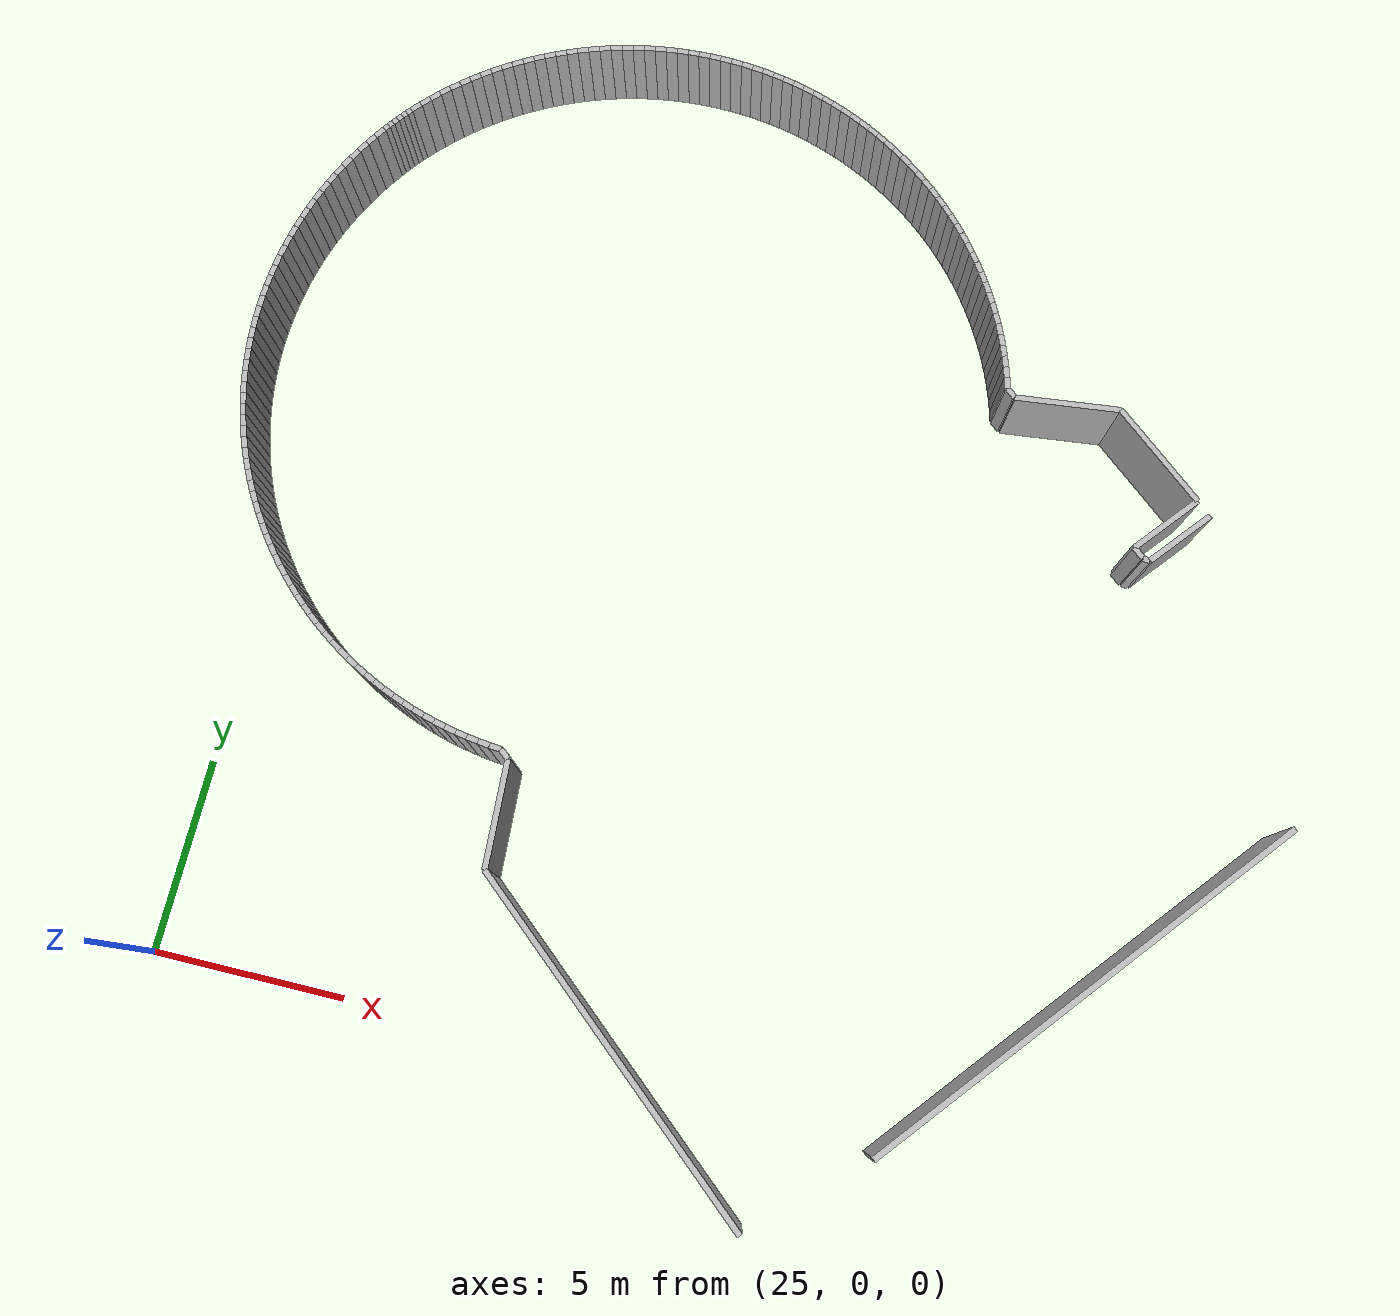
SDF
<sdf version="1.6">
 <model name="sps_4011">
  <static>1</static>
  <allow_auto_disable>0</allow_auto_disable>
  <link name="Wall1117">
   <collision name="collision"><geometry><box><size>13.0009 0.15 2.5</size></box></geometry></collision>
   <visual name="visual">
    <geometry><box><size>13.0009 0.15 2.5</size></box></geometry>
    <transparency>0.0</transparency>
   </visual>
   <pose>47.7584 4.36549 1.25 0 0 -2.27375</pose>
  </link>
  <link name="Wall1122">
   <collision name="collision"><geometry><box><size>10.3999 0.15 2.5</size></box></geometry></collision>
   <visual name="visual">
    <geometry><box><size>10.3999 0.15 2.5</size></box></geometry>
    <transparency>0.0</transparency>
   </visual>
   <pose>36.9448 0.420974 1.25 0 -0 2.43867</pose>
  </link>
  <link name="Wall1123">
   <collision name="collision"><geometry><box><size>2.75904 0.15 2.5</size></box></geometry></collision>
   <visual name="visual">
    <geometry><box><size>2.75904 0.15 2.5</size></box></geometry>
    <transparency>0.0</transparency>
   </visual>
   <pose>32.899 5.15977 1.25 0 -0 1.62766</pose>
  </link>
  <link name="Wall1124">
   <collision name="collision"><geometry><box><size>0.299242 0.15 2.5</size></box></geometry></collision>
   <visual name="visual">
    <geometry><box><size>0.299242 0.15 2.5</size></box></geometry>
    <transparency>0.0</transparency>
   </visual>
   <pose>32.7067 6.63399 1.25 0 -0 2.4369</pose>
  </link>
  <link name="Wall1125">
   <collision name="collision"><geometry><box><size>0.304996 0.15 2.5</size></box></geometry></collision>
   <visual name="visual">
    <geometry><box><size>0.304996 0.15 2.5</size></box></geometry>
    <transparency>0.0</transparency>
   </visual>
   <pose>32.4408 6.74422 1.25 0 -0 3.05423</pose>
  </link>
  <link name="Wall1126">
   <collision name="collision"><geometry><box><size>0.304719 0.15 2.5</size></box></geometry></collision>
   <visual name="visual">
    <geometry><box><size>0.304719 0.15 2.5</size></box></geometry>
    <transparency>0.0</transparency>
   </visual>
   <pose>32.1375 6.7754 1.25 0 -0 3.02395</pose>
  </link>
  <link name="Wall1127">
   <collision name="collision"><geometry><box><size>0.304703 0.15 2.5</size></box></geometry></collision>
   <visual name="visual">
    <geometry><box><size>0.304703 0.15 2.5</size></box></geometry>
    <transparency>0.0</transparency>
   </visual>
   <pose>31.8355 6.81569 1.25 0 -0 2.99403</pose>
  </link>
  <link name="Wall1128">
   <collision name="collision"><geometry><box><size>0.304845 0.15 2.5</size></box></geometry></collision>
   <visual name="visual">
    <geometry><box><size>0.304845 0.15 2.5</size></box></geometry>
    <transparency>0.0</transparency>
   </visual>
   <pose>31.5348 6.86519 1.25 0 -0 2.96285</pose>
  </link>
  <link name="Wall1129">
   <collision name="collision"><geometry><box><size>0.304848 0.15 2.5</size></box></geometry></collision>
   <visual name="visual">
    <geometry><box><size>0.304848 0.15 2.5</size></box></geometry>
    <transparency>0.0</transparency>
   </visual>
   <pose>31.2357 6.9239 1.25 0 -0 2.93265</pose>
  </link>
  <link name="Wall1130">
   <collision name="collision"><geometry><box><size>0.304863 0.15 2.5</size></box></geometry></collision>
   <visual name="visual">
    <geometry><box><size>0.304863 0.15 2.5</size></box></geometry>
    <transparency>0.0</transparency>
   </visual>
   <pose>30.9385 6.99159 1.25 0 -0 2.90268</pose>
  </link>
  <link name="Wall1131">
   <collision name="collision"><geometry><box><size>0.304661 0.15 2.5</size></box></geometry></collision>
   <visual name="visual">
    <geometry><box><size>0.304661 0.15 2.5</size></box></geometry>
    <transparency>0.0</transparency>
   </visual>
   <pose>30.6436 7.06837 1.25 0 -0 2.87105</pose>
  </link>
  <link name="Wall1132">
   <collision name="collision"><geometry><box><size>0.304852 0.15 2.5</size></box></geometry></collision>
   <visual name="visual">
    <geometry><box><size>0.304852 0.15 2.5</size></box></geometry>
    <transparency>0.0</transparency>
   </visual>
   <pose>30.3512 7.15419 1.25 0 -0 2.84118</pose>
  </link>
  <link name="Wall1133">
   <collision name="collision"><geometry><box><size>0.304737 0.15 2.5</size></box></geometry></collision>
   <visual name="visual">
    <geometry><box><size>0.304737 0.15 2.5</size></box></geometry>
    <transparency>0.0</transparency>
   </visual>
   <pose>30.0615 7.24879 1.25 0 -0 2.81072</pose>
  </link>
  <link name="Wall1134">
   <collision name="collision"><geometry><box><size>0.304848 0.15 2.5</size></box></geometry></collision>
   <visual name="visual">
    <geometry><box><size>0.304848 0.15 2.5</size></box></geometry>
    <transparency>0.0</transparency>
   </visual>
   <pose>29.7749 7.35219 1.25 0 -0 2.7802</pose>
  </link>
  <link name="Wall1135">
   <collision name="collision"><geometry><box><size>0.304722 0.15 2.5</size></box></geometry></collision>
   <visual name="visual">
    <geometry><box><size>0.304722 0.15 2.5</size></box></geometry>
    <transparency>0.0</transparency>
   </visual>
   <pose>29.4915 7.46428 1.25 0 -0 2.74967</pose>
  </link>
  <link name="Wall1136">
   <collision name="collision"><geometry><box><size>0.304824 0.15 2.5</size></box></geometry></collision>
   <visual name="visual">
    <geometry><box><size>0.304824 0.15 2.5</size></box></geometry>
    <transparency>0.0</transparency>
   </visual>
   <pose>29.2117 7.58498 1.25 0 -0 2.71906</pose>
  </link>
  <link name="Wall1137">
   <collision name="collision"><geometry><box><size>0.304831 0.15 2.5</size></box></geometry></collision>
   <visual name="visual">
    <geometry><box><size>0.304831 0.15 2.5</size></box></geometry>
    <transparency>0.0</transparency>
   </visual>
   <pose>28.9356 7.7141 1.25 0 -0 2.68923</pose>
  </link>
  <link name="Wall1138">
   <collision name="collision"><geometry><box><size>0.304734 0.15 2.5</size></box></geometry></collision>
   <visual name="visual">
    <geometry><box><size>0.304734 0.15 2.5</size></box></geometry>
    <transparency>0.0</transparency>
   </visual>
   <pose>28.6636 7.85152 1.25 0 -0 2.65833</pose>
  </link>
  <link name="Wall1139">
   <collision name="collision"><geometry><box><size>0.304981 0.15 2.5</size></box></geometry></collision>
   <visual name="visual">
    <geometry><box><size>0.304981 0.15 2.5</size></box></geometry>
    <transparency>0.0</transparency>
   </visual>
   <pose>28.3959 7.9973 1.25 0 -0 2.62754</pose>
  </link>
  <link name="Wall1140">
   <collision name="collision"><geometry><box><size>0.304719 0.15 2.5</size></box></geometry></collision>
   <visual name="visual">
    <geometry><box><size>0.304719 0.15 2.5</size></box></geometry>
    <transparency>0.0</transparency>
   </visual>
   <pose>28.1327 8.15108 1.25 0 -0 2.59805</pose>
  </link>
  <link name="Wall1141">
   <collision name="collision"><geometry><box><size>0.304849 0.15 2.5</size></box></geometry></collision>
   <visual name="visual">
    <geometry><box><size>0.304849 0.15 2.5</size></box></geometry>
    <transparency>0.0</transparency>
   </visual>
   <pose>27.8744 8.31279 1.25 0 -0 2.56642</pose>
  </link>
  <link name="Wall1142">
   <collision name="collision"><geometry><box><size>0.304751 0.15 2.5</size></box></geometry></collision>
   <visual name="visual">
    <geometry><box><size>0.304751 0.15 2.5</size></box></geometry>
    <transparency>0.0</transparency>
   </visual>
   <pose>27.6212 8.48241 1.25 0 -0 2.53631</pose>
  </link>
  <link name="Wall1143">
   <collision name="collision"><geometry><box><size>0.304782 0.15 2.5</size></box></geometry></collision>
   <visual name="visual">
    <geometry><box><size>0.304782 0.15 2.5</size></box></geometry>
    <transparency>0.0</transparency>
   </visual>
   <pose>27.3733 8.65959 1.25 0 -0 2.50586</pose>
  </link>
  <link name="Wall1144">
   <collision name="collision"><geometry><box><size>0.30478 0.15 2.5</size></box></geometry></collision>
   <visual name="visual">
    <geometry><box><size>0.30478 0.15 2.5</size></box></geometry>
    <transparency>0.0</transparency>
   </visual>
   <pose>27.1309 8.84428 1.25 0 -0 2.47514</pose>
  </link>
  <link name="Wall1145">
   <collision name="collision"><geometry><box><size>0.304862 0.15 2.5</size></box></geometry></collision>
   <visual name="visual">
    <geometry><box><size>0.304862 0.15 2.5</size></box></geometry>
    <transparency>0.0</transparency>
   </visual>
   <pose>26.8942 9.0363 1.25 0 -0 2.44493</pose>
  </link>
  <link name="Wall1146">
   <collision name="collision"><geometry><box><size>0.304831 0.15 2.5</size></box></geometry></collision>
   <visual name="visual">
    <geometry><box><size>0.304831 0.15 2.5</size></box></geometry>
    <transparency>0.0</transparency>
   </visual>
   <pose>26.6634 9.2354 1.25 0 -0 2.4147</pose>
  </link>
  <link name="Wall1147">
   <collision name="collision"><geometry><box><size>0.304729 0.15 2.5</size></box></geometry></collision>
   <visual name="visual">
    <geometry><box><size>0.304729 0.15 2.5</size></box></geometry>
    <transparency>0.0</transparency>
   </visual>
   <pose>26.4388 9.44139 1.25 0 -0 2.38396</pose>
  </link>
  <link name="Wall1148">
   <collision name="collision"><geometry><box><size>0.304656 0.15 2.5</size></box></geometry></collision>
   <visual name="visual">
    <geometry><box><size>0.304656 0.15 2.5</size></box></geometry>
    <transparency>0.0</transparency>
   </visual>
   <pose>26.2207 9.6541 1.25 0 -0 2.3535</pose>
  </link>
  <link name="Wall1149">
   <collision name="collision"><geometry><box><size>0.304907 0.15 2.5</size></box></geometry></collision>
   <visual name="visual">
    <geometry><box><size>0.304907 0.15 2.5</size></box></geometry>
    <transparency>0.0</transparency>
   </visual>
   <pose>26.0091 9.8734 1.25 0 -0 2.32321</pose>
  </link>
  <link name="Wall1150">
   <collision name="collision"><geometry><box><size>0.30484 0.15 2.5</size></box></geometry></collision>
   <visual name="visual">
    <geometry><box><size>0.30484 0.15 2.5</size></box></geometry>
    <transparency>0.0</transparency>
   </visual>
   <pose>25.8042 10.0991 1.25 0 -0 2.29258</pose>
  </link>
  <link name="Wall1151">
   <collision name="collision"><geometry><box><size>0.304715 0.15 2.5</size></box></geometry></collision>
   <visual name="visual">
    <geometry><box><size>0.304715 0.15 2.5</size></box></geometry>
    <transparency>0.0</transparency>
   </visual>
   <pose>25.6063 10.3309 1.25 0 -0 2.26187</pose>
  </link>
  <link name="Wall1152">
   <collision name="collision"><geometry><box><size>0.304845 0.15 2.5</size></box></geometry></collision>
   <visual name="visual">
    <geometry><box><size>0.304845 0.15 2.5</size></box></geometry>
    <transparency>0.0</transparency>
   </visual>
   <pose>25.4156 10.5686 1.25 0 -0 2.232</pose>
  </link>
  <link name="Wall1153">
   <collision name="collision"><geometry><box><size>0.30469 0.15 2.5</size></box></geometry></collision>
   <visual name="visual">
    <geometry><box><size>0.30469 0.15 2.5</size></box></geometry>
    <transparency>0.0</transparency>
   </visual>
   <pose>25.2323 10.812 1.25 0 -0 2.20104</pose>
  </link>
  <link name="Wall1154">
   <collision name="collision"><geometry><box><size>0.304962 0.15 2.5</size></box></geometry></collision>
   <visual name="visual">
    <geometry><box><size>0.304962 0.15 2.5</size></box></geometry>
    <transparency>0.0</transparency>
   </visual>
   <pose>25.0565 11.061 1.25 0 -0 2.17001</pose>
  </link>
  <link name="Wall1155">
   <collision name="collision"><geometry><box><size>0.304756 0.15 2.5</size></box></geometry></collision>
   <visual name="visual">
    <geometry><box><size>0.304756 0.15 2.5</size></box></geometry>
    <transparency>0.0</transparency>
   </visual>
   <pose>24.8883 11.3152 1.25 0 -0 2.14069</pose>
  </link>
  <link name="Wall1156">
   <collision name="collision"><geometry><box><size>0.304529 0.15 2.5</size></box></geometry></collision>
   <visual name="visual">
    <geometry><box><size>0.304529 0.15 2.5</size></box></geometry>
    <transparency>0.0</transparency>
   </visual>
   <pose>24.7277 11.5741 1.25 0 -0 2.11098</pose>
  </link>
  <link name="Wall1157">
   <collision name="collision"><geometry><box><size>0.304861 0.15 2.5</size></box></geometry></collision>
   <visual name="visual">
    <geometry><box><size>0.304861 0.15 2.5</size></box></geometry>
    <transparency>0.0</transparency>
   </visual>
   <pose>24.5753 11.8379 1.25 0 -0 2.07842</pose>
  </link>
  <link name="Wall1158">
   <collision name="collision"><geometry><box><size>0.304788 0.15 2.5</size></box></geometry></collision>
   <visual name="visual">
    <geometry><box><size>0.304788 0.15 2.5</size></box></geometry>
    <transparency>0.0</transparency>
   </visual>
   <pose>24.4311 12.1064 1.25 0 -0 2.04877</pose>
  </link>
  <link name="Wall1159">
   <collision name="collision"><geometry><box><size>0.305015 0.15 2.5</size></box></geometry></collision>
   <visual name="visual">
    <geometry><box><size>0.305015 0.15 2.5</size></box></geometry>
    <transparency>0.0</transparency>
   </visual>
   <pose>24.295 12.3792 1.25 0 -0 2.01842</pose>
  </link>
  <link name="Wall1160">
   <collision name="collision"><geometry><box><size>0.304635 0.15 2.5</size></box></geometry></collision>
   <visual name="visual">
    <geometry><box><size>0.304635 0.15 2.5</size></box></geometry>
    <transparency>0.0</transparency>
   </visual>
   <pose>24.1674 12.656 1.25 0 -0 1.98703</pose>
  </link>
  <link name="Wall1161">
   <collision name="collision"><geometry><box><size>0.304923 0.15 2.5</size></box></geometry></collision>
   <visual name="visual">
    <geometry><box><size>0.304923 0.15 2.5</size></box></geometry>
    <transparency>0.0</transparency>
   </visual>
   <pose>24.0484 12.9365 1.25 0 -0 1.95747</pose>
  </link>
  <link name="Wall1162">
   <collision name="collision"><geometry><box><size>0.304691 0.15 2.5</size></box></geometry></collision>
   <visual name="visual">
    <geometry><box><size>0.304691 0.15 2.5</size></box></geometry>
    <transparency>0.0</transparency>
   </visual>
   <pose>23.9378 13.2205 1.25 0 -0 1.92682</pose>
  </link>
  <link name="Wall1163">
   <collision name="collision"><geometry><box><size>0.304862 0.15 2.5</size></box></geometry></collision>
   <visual name="visual">
    <geometry><box><size>0.304862 0.15 2.5</size></box></geometry>
    <transparency>0.0</transparency>
   </visual>
   <pose>23.8359 13.5077 1.25 0 -0 1.89666</pose>
  </link>
  <link name="Wall1164">
   <collision name="collision"><geometry><box><size>0.304736 0.15 2.5</size></box></geometry></collision>
   <visual name="visual">
    <geometry><box><size>0.304736 0.15 2.5</size></box></geometry>
    <transparency>0.0</transparency>
   </visual>
   <pose>23.7428 13.7979 1.25 0 -0 1.86588</pose>
  </link>
  <link name="Wall1165">
   <collision name="collision"><geometry><box><size>0.304813 0.15 2.5</size></box></geometry></collision>
   <visual name="visual">
    <geometry><box><size>0.304813 0.15 2.5</size></box></geometry>
    <transparency>0.0</transparency>
   </visual>
   <pose>23.6586 14.0908 1.25 0 -0 1.83559</pose>
  </link>
  <link name="Wall1166">
   <collision name="collision"><geometry><box><size>0.3047 0.15 2.5</size></box></geometry></collision>
   <visual name="visual">
    <geometry><box><size>0.3047 0.15 2.5</size></box></geometry>
    <transparency>0.0</transparency>
   </visual>
   <pose>23.5835 14.3861 1.25 0 -0 1.80407</pose>
  </link>
  <link name="Wall1167">
   <collision name="collision"><geometry><box><size>0.304906 0.15 2.5</size></box></geometry></collision>
   <visual name="visual">
    <geometry><box><size>0.304906 0.15 2.5</size></box></geometry>
    <transparency>0.0</transparency>
   </visual>
   <pose>23.5174 14.6836 1.25 0 -0 1.77479</pose>
  </link>
  <link name="Wall1168">
   <collision name="collision"><geometry><box><size>0.304715 0.15 2.5</size></box></geometry></collision>
   <visual name="visual">
    <geometry><box><size>0.304715 0.15 2.5</size></box></geometry>
    <transparency>0.0</transparency>
   </visual>
   <pose>23.4603 14.983 1.25 0 -0 1.74372</pose>
  </link>
  <link name="Wall1169">
   <collision name="collision"><geometry><box><size>0.304897 0.15 2.5</size></box></geometry></collision>
   <visual name="visual">
    <geometry><box><size>0.304897 0.15 2.5</size></box></geometry>
    <transparency>0.0</transparency>
   </visual>
   <pose>23.4124 15.284 1.25 0 -0 1.713</pose>
  </link>
  <link name="Wall1170">
   <collision name="collision"><geometry><box><size>0.304739 0.15 2.5</size></box></geometry></collision>
   <visual name="visual">
    <geometry><box><size>0.304739 0.15 2.5</size></box></geometry>
    <transparency>0.0</transparency>
   </visual>
   <pose>23.3736 15.5863 1.25 0 -0 1.6838</pose>
  </link>
  <link name="Wall1171">
   <collision name="collision"><geometry><box><size>0.304847 0.15 2.5</size></box></geometry></collision>
   <visual name="visual">
    <geometry><box><size>0.304847 0.15 2.5</size></box></geometry>
    <transparency>0.0</transparency>
   </visual>
   <pose>23.344 15.8896 1.25 0 -0 1.65237</pose>
  </link>
  <link name="Wall1172">
   <collision name="collision"><geometry><box><size>0.30478 0.15 2.5</size></box></geometry></collision>
   <visual name="visual">
    <geometry><box><size>0.30478 0.15 2.5</size></box></geometry>
    <transparency>0.0</transparency>
   </visual>
   <pose>23.3238 16.1937 1.25 0 -0 1.62188</pose>
  </link>
  <link name="Wall1173">
   <collision name="collision"><geometry><box><size>0.304629 0.15 2.5</size></box></geometry></collision>
   <visual name="visual">
    <geometry><box><size>0.304629 0.15 2.5</size></box></geometry>
    <transparency>0.0</transparency>
   </visual>
   <pose>23.3129 16.4982 1.25 0 -0 1.59123</pose>
  </link>
  <link name="Wall1174">
   <collision name="collision"><geometry><box><size>0.304823 0.15 2.5</size></box></geometry></collision>
   <visual name="visual">
    <geometry><box><size>0.304823 0.15 2.5</size></box></geometry>
    <transparency>0.0</transparency>
   </visual>
   <pose>23.3112 16.8029 1.25 0 -0 1.56159</pose>
  </link>
  <link name="Wall1175">
   <collision name="collision"><geometry><box><size>0.304878 0.15 2.5</size></box></geometry></collision>
   <visual name="visual">
    <geometry><box><size>0.304878 0.15 2.5</size></box></geometry>
    <transparency>0.0</transparency>
   </visual>
   <pose>23.3188 17.1076 1.25 0 -0 1.53015</pose>
  </link>
  <link name="Wall1176">
   <collision name="collision"><geometry><box><size>0.304783 0.15 2.5</size></box></geometry></collision>
   <visual name="visual">
    <geometry><box><size>0.304783 0.15 2.5</size></box></geometry>
    <transparency>0.0</transparency>
   </visual>
   <pose>23.3358 17.4119 1.25 0 -0 1.49985</pose>
  </link>
  <link name="Wall1177">
   <collision name="collision"><geometry><box><size>0.304706 0.15 2.5</size></box></geometry></collision>
   <visual name="visual">
    <geometry><box><size>0.304706 0.15 2.5</size></box></geometry>
    <transparency>0.0</transparency>
   </visual>
   <pose>23.362 17.7155 1.25 0 -0 1.47007</pose>
  </link>
  <link name="Wall1178">
   <collision name="collision"><geometry><box><size>0.304842 0.15 2.5</size></box></geometry></collision>
   <visual name="visual">
    <geometry><box><size>0.304842 0.15 2.5</size></box></geometry>
    <transparency>0.0</transparency>
   </visual>
   <pose>23.3974 18.0182 1.25 0 -0 1.43867</pose>
  </link>
  <link name="Wall1179">
   <collision name="collision"><geometry><box><size>0.304838 0.15 2.5</size></box></geometry></collision>
   <visual name="visual">
    <geometry><box><size>0.304838 0.15 2.5</size></box></geometry>
    <transparency>0.0</transparency>
   </visual>
   <pose>23.442 18.3197 1.25 0 -0 1.40871</pose>
  </link>
  <link name="Wall1180">
   <collision name="collision"><geometry><box><size>0.304808 0.15 2.5</size></box></geometry></collision>
   <visual name="visual">
    <geometry><box><size>0.304808 0.15 2.5</size></box></geometry>
    <transparency>0.0</transparency>
   </visual>
   <pose>23.4957 18.6197 1.25 0 -0 1.37858</pose>
  </link>
  <link name="Wall1181">
   <collision name="collision"><geometry><box><size>0.304764 0.15 2.5</size></box></geometry></collision>
   <visual name="visual">
    <geometry><box><size>0.304764 0.15 2.5</size></box></geometry>
    <transparency>0.0</transparency>
   </visual>
   <pose>23.5586 18.9179 1.25 0 -0 1.34724</pose>
  </link>
  <link name="Wall1182">
   <collision name="collision"><geometry><box><size>0.30472 0.15 2.5</size></box></geometry></collision>
   <visual name="visual">
    <geometry><box><size>0.30472 0.15 2.5</size></box></geometry>
    <transparency>0.0</transparency>
   </visual>
   <pose>23.6306 19.214 1.25 0 -0 1.31732</pose>
  </link>
  <link name="Wall1183">
   <collision name="collision"><geometry><box><size>0.304807 0.15 2.5</size></box></geometry></collision>
   <visual name="visual">
    <geometry><box><size>0.304807 0.15 2.5</size></box></geometry>
    <transparency>0.0</transparency>
   </visual>
   <pose>23.7115 19.5078 1.25 0 -0 1.28686</pose>
  </link>
  <link name="Wall1184">
   <collision name="collision"><geometry><box><size>0.304847 0.15 2.5</size></box></geometry></collision>
   <visual name="visual">
    <geometry><box><size>0.304847 0.15 2.5</size></box></geometry>
    <transparency>0.0</transparency>
   </visual>
   <pose>23.8014 19.799 1.25 0 -0 1.25588</pose>
  </link>
  <link name="Wall1185">
   <collision name="collision"><geometry><box><size>0.304752 0.15 2.5</size></box></geometry></collision>
   <visual name="visual">
    <geometry><box><size>0.304752 0.15 2.5</size></box></geometry>
    <transparency>0.0</transparency>
   </visual>
   <pose>23.9003 20.0873 1.25 0 -0 1.22529</pose>
  </link>
  <link name="Wall1186">
   <collision name="collision"><geometry><box><size>0.305046 0.15 2.5</size></box></geometry></collision>
   <visual name="visual">
    <geometry><box><size>0.305046 0.15 2.5</size></box></geometry>
    <transparency>0.0</transparency>
   </visual>
   <pose>24.0078 20.3726 1.25 0 -0 1.19549</pose>
  </link>
  <link name="Wall1187">
   <collision name="collision"><geometry><box><size>0.3048 0.15 2.5</size></box></geometry></collision>
   <visual name="visual">
    <geometry><box><size>0.3048 0.15 2.5</size></box></geometry>
    <transparency>0.0</transparency>
   </visual>
   <pose>24.1239 20.6545 1.25 0 -0 1.16485</pose>
  </link>
  <link name="Wall1188">
   <collision name="collision"><geometry><box><size>0.304734 0.15 2.5</size></box></geometry></collision>
   <visual name="visual">
    <geometry><box><size>0.304734 0.15 2.5</size></box></geometry>
    <transparency>0.0</transparency>
   </visual>
   <pose>24.2484 20.9326 1.25 0 -0 1.13447</pose>
  </link>
  <link name="Wall1189">
   <collision name="collision"><geometry><box><size>0.304951 0.15 2.5</size></box></geometry></collision>
   <visual name="visual">
    <geometry><box><size>0.304951 0.15 2.5</size></box></geometry>
    <transparency>0.0</transparency>
   </visual>
   <pose>24.3816 21.2068 1.25 0 -0 1.10321</pose>
  </link>
  <link name="Wall1190">
   <collision name="collision"><geometry><box><size>0.304685 0.15 2.5</size></box></geometry></collision>
   <visual name="visual">
    <geometry><box><size>0.304685 0.15 2.5</size></box></geometry>
    <transparency>0.0</transparency>
   </visual>
   <pose>24.523 21.4768 1.25 0 -0 1.07337</pose>
  </link>
  <link name="Wall1191">
   <collision name="collision"><geometry><box><size>0.304762 0.15 2.5</size></box></geometry></collision>
   <visual name="visual">
    <geometry><box><size>0.304762 0.15 2.5</size></box></geometry>
    <transparency>0.0</transparency>
   </visual>
   <pose>24.6724 21.7423 1.25 0 -0 1.04271</pose>
  </link>
  <link name="Wall1192">
   <collision name="collision"><geometry><box><size>0.304859 0.15 2.5</size></box></geometry></collision>
   <visual name="visual">
    <geometry><box><size>0.304859 0.15 2.5</size></box></geometry>
    <transparency>0.0</transparency>
   </visual>
   <pose>24.8299 22.0032 1.25 0 -0 1.01273</pose>
  </link>
  <link name="Wall1193">
   <collision name="collision"><geometry><box><size>0.304757 0.15 2.5</size></box></geometry></collision>
   <visual name="visual">
    <geometry><box><size>0.304757 0.15 2.5</size></box></geometry>
    <transparency>0.0</transparency>
   </visual>
   <pose>24.9954 22.2592 1.25 0 -0 0.981516</pose>
  </link>
  <link name="Wall1194">
   <collision name="collision"><geometry><box><size>0.152376 0.15 2.5</size></box></geometry></collision>
   <visual name="visual">
    <geometry><box><size>0.152376 0.15 2.5</size></box></geometry>
    <transparency>0.0</transparency>
   </visual>
   <pose>25.1237 22.4483 1.25 0 -0 0.959906</pose>
  </link>
  <link name="Wall1195">
   <collision name="collision"><geometry><box><size>0.152401 0.15 2.5</size></box></geometry></collision>
   <visual name="visual">
    <geometry><box><size>0.152401 0.15 2.5</size></box></geometry>
    <transparency>0.0</transparency>
   </visual>
   <pose>25.2121 22.5724 1.25 0 -0 0.943796</pose>
  </link>
  <link name="Wall1196">
   <collision name="collision"><geometry><box><size>0.152124 0.15 2.5</size></box></geometry></collision>
   <visual name="visual">
    <geometry><box><size>0.152124 0.15 2.5</size></box></geometry>
    <transparency>0.0</transparency>
   </visual>
   <pose>25.3025 22.695 1.25 0 -0 0.928017</pose>
  </link>
  <link name="Wall1197">
   <collision name="collision"><geometry><box><size>0.152614 0.15 2.5</size></box></geometry></collision>
   <visual name="visual">
    <geometry><box><size>0.152614 0.15 2.5</size></box></geometry>
    <transparency>0.0</transparency>
   </visual>
   <pose>25.3946 22.8163 1.25 0 -0 0.913857</pose>
  </link>
  <link name="Wall1198">
   <collision name="collision"><geometry><box><size>0.152399 0.15 2.5</size></box></geometry></collision>
   <visual name="visual">
    <geometry><box><size>0.152399 0.15 2.5</size></box></geometry>
    <transparency>0.0</transparency>
   </visual>
   <pose>25.4888 22.9363 1.25 0 -0 0.897494</pose>
  </link>
  <link name="Wall1199">
   <collision name="collision"><geometry><box><size>0.152328 0.15 2.5</size></box></geometry></collision>
   <visual name="visual">
    <geometry><box><size>0.152328 0.15 2.5</size></box></geometry>
    <transparency>0.0</transparency>
   </visual>
   <pose>25.5847 23.0547 1.25 0 -0 0.882163</pose>
  </link>
  <link name="Wall1200">
   <collision name="collision"><geometry><box><size>0.304867 0.15 2.5</size></box></geometry></collision>
   <visual name="visual">
    <geometry><box><size>0.304867 0.15 2.5</size></box></geometry>
    <transparency>0.0</transparency>
   </visual>
   <pose>25.7342 23.2276 1.25 0 -0 0.845883</pose>
  </link>
  <link name="Wall1201">
   <collision name="collision"><geometry><box><size>0.304781 0.15 2.5</size></box></geometry></collision>
   <visual name="visual">
    <geometry><box><size>0.304781 0.15 2.5</size></box></geometry>
    <transparency>0.0</transparency>
   </visual>
   <pose>25.9398 23.4525 1.25 0 -0 0.814148</pose>
  </link>
  <link name="Wall1202">
   <collision name="collision"><geometry><box><size>0.304785 0.15 2.5</size></box></geometry></collision>
   <visual name="visual">
    <geometry><box><size>0.304785 0.15 2.5</size></box></geometry>
    <transparency>0.0</transparency>
   </visual>
   <pose>26.1524 23.6709 1.25 0 -0 0.783982</pose>
  </link>
  <link name="Wall1203">
   <collision name="collision"><geometry><box><size>0.304721 0.15 2.5</size></box></geometry></collision>
   <visual name="visual">
    <geometry><box><size>0.304721 0.15 2.5</size></box></geometry>
    <transparency>0.0</transparency>
   </visual>
   <pose>26.3714 23.8828 1.25 0 -0 0.753809</pose>
  </link>
  <link name="Wall1204">
   <collision name="collision"><geometry><box><size>0.304802 0.15 2.5</size></box></geometry></collision>
   <visual name="visual">
    <geometry><box><size>0.304802 0.15 2.5</size></box></geometry>
    <transparency>0.0</transparency>
   </visual>
   <pose>26.5966 24.088 1.25 0 -0 0.723765</pose>
  </link>
  <link name="Wall1205">
   <collision name="collision"><geometry><box><size>0.304807 0.15 2.5</size></box></geometry></collision>
   <visual name="visual">
    <geometry><box><size>0.304807 0.15 2.5</size></box></geometry>
    <transparency>0.0</transparency>
   </visual>
   <pose>26.8281 24.2862 1.25 0 -0 0.69238</pose>
  </link>
  <link name="Wall1206">
   <collision name="collision"><geometry><box><size>0.304621 0.15 2.5</size></box></geometry></collision>
   <visual name="visual">
    <geometry><box><size>0.304621 0.15 2.5</size></box></geometry>
    <transparency>0.0</transparency>
   </visual>
   <pose>27.0655 24.4772 1.25 0 -0 0.662537</pose>
  </link>
  <link name="Wall1207">
   <collision name="collision"><geometry><box><size>0.304988 0.15 2.5</size></box></geometry></collision>
   <visual name="visual">
    <geometry><box><size>0.304988 0.15 2.5</size></box></geometry>
    <transparency>0.0</transparency>
   </visual>
   <pose>27.3086 24.661 1.25 0 -0 0.632254</pose>
  </link>
  <link name="Wall1208">
   <collision name="collision"><geometry><box><size>0.304954 0.15 2.5</size></box></geometry></collision>
   <visual name="visual">
    <geometry><box><size>0.304954 0.15 2.5</size></box></geometry>
    <transparency>0.0</transparency>
   </visual>
   <pose>27.5574 24.8374 1.25 0 -0 0.601659</pose>
  </link>
  <link name="Wall1209">
   <collision name="collision"><geometry><box><size>0.304668 0.15 2.5</size></box></geometry></collision>
   <visual name="visual">
    <geometry><box><size>0.304668 0.15 2.5</size></box></geometry>
    <transparency>0.0</transparency>
   </visual>
   <pose>27.8113 25.006 1.25 0 -0 0.570555</pose>
  </link>
  <link name="Wall1210">
   <collision name="collision"><geometry><box><size>0.304781 0.15 2.5</size></box></geometry></collision>
   <visual name="visual">
    <geometry><box><size>0.304781 0.15 2.5</size></box></geometry>
    <transparency>0.0</transparency>
   </visual>
   <pose>28.0702 25.1667 1.25 0 -0 0.540385</pose>
  </link>
  <link name="Wall1211">
   <collision name="collision"><geometry><box><size>0.304749 0.15 2.5</size></box></geometry></collision>
   <visual name="visual">
    <geometry><box><size>0.304749 0.15 2.5</size></box></geometry>
    <transparency>0.0</transparency>
   </visual>
   <pose>28.3339 25.3194 1.25 0 -0 0.509433</pose>
  </link>
  <link name="Wall1212">
   <collision name="collision"><geometry><box><size>0.304769 0.15 2.5</size></box></geometry></collision>
   <visual name="visual">
    <geometry><box><size>0.304769 0.15 2.5</size></box></geometry>
    <transparency>0.0</transparency>
   </visual>
   <pose>28.6021 25.464 1.25 0 -0 0.47959</pose>
  </link>
  <link name="Wall1213">
   <collision name="collision"><geometry><box><size>0.304843 0.15 2.5</size></box></geometry></collision>
   <visual name="visual">
    <geometry><box><size>0.304843 0.15 2.5</size></box></geometry>
    <transparency>0.0</transparency>
   </visual>
   <pose>28.8746 25.6005 1.25 0 -0 0.449231</pose>
  </link>
  <link name="Wall1214">
   <collision name="collision"><geometry><box><size>0.304827 0.15 2.5</size></box></geometry></collision>
   <visual name="visual">
    <geometry><box><size>0.304827 0.15 2.5</size></box></geometry>
    <transparency>0.0</transparency>
   </visual>
   <pose>29.1511 25.7286 1.25 0 -0 0.418143</pose>
  </link>
  <link name="Wall1215">
   <collision name="collision"><geometry><box><size>0.304745 0.15 2.5</size></box></geometry></collision>
   <visual name="visual">
    <geometry><box><size>0.304745 0.15 2.5</size></box></geometry>
    <transparency>0.0</transparency>
   </visual>
   <pose>29.4314 25.8482 1.25 0 -0 0.388428</pose>
  </link>
  <link name="Wall1216">
   <collision name="collision"><geometry><box><size>0.304819 0.15 2.5</size></box></geometry></collision>
   <visual name="visual">
    <geometry><box><size>0.304819 0.15 2.5</size></box></geometry>
    <transparency>0.0</transparency>
   </visual>
   <pose>29.7153 25.9592 1.25 0 -0 0.357154</pose>
  </link>
  <link name="Wall1217">
   <collision name="collision"><geometry><box><size>0.304768 0.15 2.5</size></box></geometry></collision>
   <visual name="visual">
    <geometry><box><size>0.304768 0.15 2.5</size></box></geometry>
    <transparency>0.0</transparency>
   </visual>
   <pose>30.0023 26.0615 1.25 0 -0 0.32745</pose>
  </link>
  <link name="Wall1218">
   <collision name="collision"><geometry><box><size>0.304726 0.15 2.5</size></box></geometry></collision>
   <visual name="visual">
    <geometry><box><size>0.304726 0.15 2.5</size></box></geometry>
    <transparency>0.0</transparency>
   </visual>
   <pose>30.2924 26.155 1.25 0 -0 0.296349</pose>
  </link>
  <link name="Wall1219">
   <collision name="collision"><geometry><box><size>0.304925 0.15 2.5</size></box></geometry></collision>
   <visual name="visual">
    <geometry><box><size>0.304925 0.15 2.5</size></box></geometry>
    <transparency>0.0</transparency>
   </visual>
   <pose>30.5852 26.2396 1.25 0 -0 0.266147</pose>
  </link>
  <link name="Wall1220">
   <collision name="collision"><geometry><box><size>0.304961 0.15 2.5</size></box></geometry></collision>
   <visual name="visual">
    <geometry><box><size>0.304961 0.15 2.5</size></box></geometry>
    <transparency>0.0</transparency>
   </visual>
   <pose>30.8805 26.3152 1.25 0 -0 0.235125</pose>
  </link>
  <link name="Wall1221">
   <collision name="collision"><geometry><box><size>0.304634 0.15 2.5</size></box></geometry></collision>
   <visual name="visual">
    <geometry><box><size>0.304634 0.15 2.5</size></box></geometry>
    <transparency>0.0</transparency>
   </visual>
   <pose>31.1779 26.3818 1.25 0 -0 0.205608</pose>
  </link>
  <link name="Wall1222">
   <collision name="collision"><geometry><box><size>0.30487 0.15 2.5</size></box></geometry></collision>
   <visual name="visual">
    <geometry><box><size>0.30487 0.15 2.5</size></box></geometry>
    <transparency>0.0</transparency>
   </visual>
   <pose>31.4772 26.4394 1.25 0 -0 0.174661</pose>
  </link>
  <link name="Wall1223">
   <collision name="collision"><geometry><box><size>0.304707 0.15 2.5</size></box></geometry></collision>
   <visual name="visual">
    <geometry><box><size>0.304707 0.15 2.5</size></box></geometry>
    <transparency>0.0</transparency>
   </visual>
   <pose>31.7781 26.4877 1.25 0 -0 0.143512</pose>
  </link>
  <link name="Wall1224">
   <collision name="collision"><geometry><box><size>0.304767 0.15 2.5</size></box></geometry></collision>
   <visual name="visual">
    <geometry><box><size>0.304767 0.15 2.5</size></box></geometry>
    <transparency>0.0</transparency>
   </visual>
   <pose>32.0803 26.5268 1.25 0 -0 0.113798</pose>
  </link>
  <link name="Wall1225">
   <collision name="collision"><geometry><box><size>0.304649 0.15 2.5</size></box></geometry></collision>
   <visual name="visual">
    <geometry><box><size>0.304649 0.15 2.5</size></box></geometry>
    <transparency>0.0</transparency>
   </visual>
   <pose>32.3834 26.5568 1.25 0 -0 0.0834407</pose>
  </link>
  <link name="Wall1226">
   <collision name="collision"><geometry><box><size>0.304863 0.15 2.5</size></box></geometry></collision>
   <visual name="visual">
    <geometry><box><size>0.304863 0.15 2.5</size></box></geometry>
    <transparency>0.0</transparency>
   </visual>
   <pose>32.6875 26.5775 1.25 0 -0 0.0524778</pose>
  </link>
  <link name="Wall1227">
   <collision name="collision"><geometry><box><size>0.304825 0.15 2.5</size></box></geometry></collision>
   <visual name="visual">
    <geometry><box><size>0.304825 0.15 2.5</size></box></geometry>
    <transparency>0.0</transparency>
   </visual>
   <pose>32.9921 26.5889 1.25 0 -0 0.0224276</pose>
  </link>
  <link name="Wall1228">
   <collision name="collision"><geometry><box><size>0.304821 0.15 2.5</size></box></geometry></collision>
   <visual name="visual">
    <geometry><box><size>0.304821 0.15 2.5</size></box></geometry>
    <transparency>0.0</transparency>
   </visual>
   <pose>33.2968 26.591 1.25 0 0 -0.00861012</pose>
  </link>
  <link name="Wall1229">
   <collision name="collision"><geometry><box><size>0.304847 0.15 2.5</size></box></geometry></collision>
   <visual name="visual">
    <geometry><box><size>0.304847 0.15 2.5</size></box></geometry>
    <transparency>0.0</transparency>
   </visual>
   <pose>33.6016 26.5839 1.25 0 0 -0.0380501</pose>
  </link>
  <link name="Wall1230">
   <collision name="collision"><geometry><box><size>0.304753 0.15 2.5</size></box></geometry></collision>
   <visual name="visual">
    <geometry><box><size>0.304753 0.15 2.5</size></box></geometry>
    <transparency>0.0</transparency>
   </visual>
   <pose>33.9059 26.5675 1.25 0 0 -0.0695524</pose>
  </link>
  <link name="Wall1231">
   <collision name="collision"><geometry><box><size>0.304663 0.15 2.5</size></box></geometry></collision>
   <visual name="visual">
    <geometry><box><size>0.304663 0.15 2.5</size></box></geometry>
    <transparency>0.0</transparency>
   </visual>
   <pose>34.2095 26.5418 1.25 0 0 -0.0993298</pose>
  </link>
  <link name="Wall1232">
   <collision name="collision"><geometry><box><size>0.30477 0.15 2.5</size></box></geometry></collision>
   <visual name="visual">
    <geometry><box><size>0.30477 0.15 2.5</size></box></geometry>
    <transparency>0.0</transparency>
   </visual>
   <pose>34.5121 26.5069 1.25 0 0 -0.130341</pose>
  </link>
  <link name="Wall1233">
   <collision name="collision"><geometry><box><size>0.304769 0.15 2.5</size></box></geometry></collision>
   <visual name="visual">
    <geometry><box><size>0.304769 0.15 2.5</size></box></geometry>
    <transparency>0.0</transparency>
   </visual>
   <pose>34.8137 26.4627 1.25 0 0 -0.160704</pose>
  </link>
  <link name="Wall1234">
   <collision name="collision"><geometry><box><size>0.304906 0.15 2.5</size></box></geometry></collision>
   <visual name="visual">
    <geometry><box><size>0.304906 0.15 2.5</size></box></geometry>
    <transparency>0.0</transparency>
   </visual>
   <pose>35.1138 26.4094 1.25 0 0 -0.190722</pose>
  </link>
  <link name="Wall1235">
   <collision name="collision"><geometry><box><size>0.304643 0.15 2.5</size></box></geometry></collision>
   <visual name="visual">
    <geometry><box><size>0.304643 0.15 2.5</size></box></geometry>
    <transparency>0.0</transparency>
   </visual>
   <pose>35.412 26.347 1.25 0 0 -0.221798</pose>
  </link>
  <link name="Wall1236">
   <collision name="collision"><geometry><box><size>0.30485 0.15 2.5</size></box></geometry></collision>
   <visual name="visual">
    <geometry><box><size>0.30485 0.15 2.5</size></box></geometry>
    <transparency>0.0</transparency>
   </visual>
   <pose>35.7082 26.2755 1.25 0 0 -0.251923</pose>
  </link>
  <link name="Wall1237">
   <collision name="collision"><geometry><box><size>0.304881 0.15 2.5</size></box></geometry></collision>
   <visual name="visual">
    <geometry><box><size>0.304881 0.15 2.5</size></box></geometry>
    <transparency>0.0</transparency>
   </visual>
   <pose>36.0023 26.195 1.25 0 0 -0.282617</pose>
  </link>
  <link name="Wall1238">
   <collision name="collision"><geometry><box><size>0.304833 0.15 2.5</size></box></geometry></collision>
   <visual name="visual">
    <geometry><box><size>0.304833 0.15 2.5</size></box></geometry>
    <transparency>0.0</transparency>
   </visual>
   <pose>36.2937 26.1056 1.25 0 0 -0.312823</pose>
  </link>
  <link name="Wall1239">
   <collision name="collision"><geometry><box><size>0.304838 0.15 2.5</size></box></geometry></collision>
   <visual name="visual">
    <geometry><box><size>0.304838 0.15 2.5</size></box></geometry>
    <transparency>0.0</transparency>
   </visual>
   <pose>36.5822 26.0073 1.25 0 0 -0.343913</pose>
  </link>
  <link name="Wall1240">
   <collision name="collision"><geometry><box><size>0.304662 0.15 2.5</size></box></geometry></collision>
   <visual name="visual">
    <geometry><box><size>0.304662 0.15 2.5</size></box></geometry>
    <transparency>0.0</transparency>
   </visual>
   <pose>36.8675 25.9002 1.25 0 0 -0.374294</pose>
  </link>
  <link name="Wall1241">
   <collision name="collision"><geometry><box><size>0.304824 0.15 2.5</size></box></geometry></collision>
   <visual name="visual">
    <geometry><box><size>0.304824 0.15 2.5</size></box></geometry>
    <transparency>0.0</transparency>
   </visual>
   <pose>37.1493 25.7845 1.25 0 0 -0.404603</pose>
  </link>
  <link name="Wall1242">
   <collision name="collision"><geometry><box><size>0.304801 0.15 2.5</size></box></geometry></collision>
   <visual name="visual">
    <geometry><box><size>0.304801 0.15 2.5</size></box></geometry>
    <transparency>0.0</transparency>
   </visual>
   <pose>37.4277 25.6603 1.25 0 0 -0.434897</pose>
  </link>
  <link name="Wall1243">
   <collision name="collision"><geometry><box><size>0.304812 0.15 2.5</size></box></geometry></collision>
   <visual name="visual">
    <geometry><box><size>0.304812 0.15 2.5</size></box></geometry>
    <transparency>0.0</transparency>
   </visual>
   <pose>37.7021 25.5277 1.25 0 0 -0.465349</pose>
  </link>
  <link name="Wall1244">
   <collision name="collision"><geometry><box><size>0.304886 0.15 2.5</size></box></geometry></collision>
   <visual name="visual">
    <geometry><box><size>0.304886 0.15 2.5</size></box></geometry>
    <transparency>0.0</transparency>
   </visual>
   <pose>37.9724 25.3868 1.25 0 0 -0.495704</pose>
  </link>
  <link name="Wall1245">
   <collision name="collision"><geometry><box><size>0.304683 0.15 2.5</size></box></geometry></collision>
   <visual name="visual">
    <geometry><box><size>0.304683 0.15 2.5</size></box></geometry>
    <transparency>0.0</transparency>
   </visual>
   <pose>38.2382 25.2377 1.25 0 0 -0.526849</pose>
  </link>
  <link name="Wall1246">
   <collision name="collision"><geometry><box><size>0.304841 0.15 2.5</size></box></geometry></collision>
   <visual name="visual">
    <geometry><box><size>0.304841 0.15 2.5</size></box></geometry>
    <transparency>0.0</transparency>
   </visual>
   <pose>38.4993 25.0806 1.25 0 0 -0.556456</pose>
  </link>
  <link name="Wall1247">
   <collision name="collision"><geometry><box><size>0.304909 0.15 2.5</size></box></geometry></collision>
   <visual name="visual">
    <geometry><box><size>0.304909 0.15 2.5</size></box></geometry>
    <transparency>0.0</transparency>
   </visual>
   <pose>38.7556 24.9156 1.25 0 0 -0.587503</pose>
  </link>
  <link name="Wall1248">
   <collision name="collision"><geometry><box><size>0.304775 0.15 2.5</size></box></geometry></collision>
   <visual name="visual">
    <geometry><box><size>0.304775 0.15 2.5</size></box></geometry>
    <transparency>0.0</transparency>
   </visual>
   <pose>39.0067 24.7428 1.25 0 0 -0.617945</pose>
  </link>
  <link name="Wall1249">
   <collision name="collision"><geometry><box><size>0.304801 0.15 2.5</size></box></geometry></collision>
   <visual name="visual">
    <geometry><box><size>0.304801 0.15 2.5</size></box></geometry>
    <transparency>0.0</transparency>
   </visual>
   <pose>39.2524 24.5625 1.25 0 0 -0.648187</pose>
  </link>
  <link name="Wall1250">
   <collision name="collision"><geometry><box><size>0.304782 0.15 2.5</size></box></geometry></collision>
   <visual name="visual">
    <geometry><box><size>0.304782 0.15 2.5</size></box></geometry>
    <transparency>0.0</transparency>
   </visual>
   <pose>39.4925 24.3748 1.25 0 0 -0.678994</pose>
  </link>
  <link name="Wall1251">
   <collision name="collision"><geometry><box><size>0.304635 0.15 2.5</size></box></geometry></collision>
   <visual name="visual">
    <geometry><box><size>0.304635 0.15 2.5</size></box></geometry>
    <transparency>0.0</transparency>
   </visual>
   <pose>39.7266 24.1799 1.25 0 0 -0.709104</pose>
  </link>
  <link name="Wall1252">
   <collision name="collision"><geometry><box><size>0.30467 0.15 2.5</size></box></geometry></collision>
   <visual name="visual">
    <geometry><box><size>0.30467 0.15 2.5</size></box></geometry>
    <transparency>0.0</transparency>
   </visual>
   <pose>39.9548 23.978 1.25 0 0 -0.739769</pose>
  </link>
  <link name="Wall1253">
   <collision name="collision"><geometry><box><size>0.304776 0.15 2.5</size></box></geometry></collision>
   <visual name="visual">
    <geometry><box><size>0.304776 0.15 2.5</size></box></geometry>
    <transparency>0.0</transparency>
   </visual>
   <pose>40.1767 23.7692 1.25 0 0 -0.770246</pose>
  </link>
  <link name="Wall1254">
   <collision name="collision"><geometry><box><size>0.30482 0.15 2.5</size></box></geometry></collision>
   <visual name="visual">
    <geometry><box><size>0.30482 0.15 2.5</size></box></geometry>
    <transparency>0.0</transparency>
   </visual>
   <pose>40.3921 23.5537 1.25 0 0 -0.80069</pose>
  </link>
  <link name="Wall1255">
   <collision name="collision"><geometry><box><size>0.304805 0.15 2.5</size></box></geometry></collision>
   <visual name="visual">
    <geometry><box><size>0.304805 0.15 2.5</size></box></geometry>
    <transparency>0.0</transparency>
   </visual>
   <pose>40.6009 23.3317 1.25 0 0 -0.831432</pose>
  </link>
  <link name="Wall1256">
   <collision name="collision"><geometry><box><size>0.304814 0.15 2.5</size></box></geometry></collision>
   <visual name="visual">
    <geometry><box><size>0.304814 0.15 2.5</size></box></geometry>
    <transparency>0.0</transparency>
   </visual>
   <pose>40.8028 23.1034 1.25 0 0 -0.861931</pose>
  </link>
  <link name="Wall1257">
   <collision name="collision"><geometry><box><size>0.304782 0.15 2.5</size></box></geometry></collision>
   <visual name="visual">
    <geometry><box><size>0.304782 0.15 2.5</size></box></geometry>
    <transparency>0.0</transparency>
   </visual>
   <pose>40.9978 22.8691 1.25 0 0 -0.891802</pose>
  </link>
  <link name="Wall1258">
   <collision name="collision"><geometry><box><size>0.304764 0.15 2.5</size></box></geometry></collision>
   <visual name="visual">
    <geometry><box><size>0.304764 0.15 2.5</size></box></geometry>
    <transparency>0.0</transparency>
   </visual>
   <pose>41.1854 22.629 1.25 0 0 -0.922769</pose>
  </link>
  <link name="Wall1259">
   <collision name="collision"><geometry><box><size>0.304916 0.15 2.5</size></box></geometry></collision>
   <visual name="visual">
    <geometry><box><size>0.304916 0.15 2.5</size></box></geometry>
    <transparency>0.0</transparency>
   </visual>
   <pose>41.3658 22.3833 1.25 0 0 -0.952199</pose>
  </link>
  <link name="Wall1260">
   <collision name="collision"><geometry><box><size>0.304757 0.15 2.5</size></box></geometry></collision>
   <visual name="visual">
    <geometry><box><size>0.304757 0.15 2.5</size></box></geometry>
    <transparency>0.0</transparency>
   </visual>
   <pose>41.5386 22.1322 1.25 0 0 -0.984405</pose>
  </link>
  <link name="Wall1261">
   <collision name="collision"><geometry><box><size>0.304757 0.15 2.5</size></box></geometry></collision>
   <visual name="visual">
    <geometry><box><size>0.304757 0.15 2.5</size></box></geometry>
    <transparency>0.0</transparency>
   </visual>
   <pose>41.7034 21.8759 1.25 0 0 -1.0144</pose>
  </link>
  <link name="Wall1262">
   <collision name="collision"><geometry><box><size>0.304894 0.15 2.5</size></box></geometry></collision>
   <visual name="visual">
    <geometry><box><size>0.304894 0.15 2.5</size></box></geometry>
    <transparency>0.0</transparency>
   </visual>
   <pose>41.8604 21.6147 1.25 0 0 -1.04435</pose>
  </link>
  <link name="Wall1263">
   <collision name="collision"><geometry><box><size>0.304585 0.15 2.5</size></box></geometry></collision>
   <visual name="visual">
    <geometry><box><size>0.304585 0.15 2.5</size></box></geometry>
    <transparency>0.0</transparency>
   </visual>
   <pose>42.0095 21.3489 1.25 0 0 -1.07524</pose>
  </link>
  <link name="Wall1264">
   <collision name="collision"><geometry><box><size>0.304894 0.15 2.5</size></box></geometry></collision>
   <visual name="visual">
    <geometry><box><size>0.304894 0.15 2.5</size></box></geometry>
    <transparency>0.0</transparency>
   </visual>
   <pose>42.1504 21.0787 1.25 0 0 -1.10491</pose>
  </link>
  <link name="Wall1265">
   <collision name="collision"><geometry><box><size>0.304801 0.15 2.5</size></box></geometry></collision>
   <visual name="visual">
    <geometry><box><size>0.304801 0.15 2.5</size></box></geometry>
    <transparency>0.0</transparency>
   </visual>
   <pose>42.283 20.8043 1.25 0 0 -1.1359</pose>
  </link>
  <link name="Wall1266">
   <collision name="collision"><geometry><box><size>0.304824 0.15 2.5</size></box></geometry></collision>
   <visual name="visual">
    <geometry><box><size>0.304824 0.15 2.5</size></box></geometry>
    <transparency>0.0</transparency>
   </visual>
   <pose>42.4072 20.526 1.25 0 0 -1.16619</pose>
  </link>
  <link name="Wall1267">
   <collision name="collision"><geometry><box><size>0.304823 0.15 2.5</size></box></geometry></collision>
   <visual name="visual">
    <geometry><box><size>0.304823 0.15 2.5</size></box></geometry>
    <transparency>0.0</transparency>
   </visual>
   <pose>42.5228 20.244 1.25 0 0 -1.19735</pose>
  </link>
  <link name="Wall1268">
   <collision name="collision"><geometry><box><size>0.304838 0.15 2.5</size></box></geometry></collision>
   <visual name="visual">
    <geometry><box><size>0.304838 0.15 2.5</size></box></geometry>
    <transparency>0.0</transparency>
   </visual>
   <pose>42.6298 19.9586 1.25 0 0 -1.22688</pose>
  </link>
  <link name="Wall1269">
   <collision name="collision"><geometry><box><size>0.304719 0.15 2.5</size></box></geometry></collision>
   <visual name="visual">
    <geometry><box><size>0.304719 0.15 2.5</size></box></geometry>
    <transparency>0.0</transparency>
   </visual>
   <pose>42.728 19.6701 1.25 0 0 -1.25848</pose>
  </link>
  <link name="Wall1270">
   <collision name="collision"><geometry><box><size>0.304705 0.15 2.5</size></box></geometry></collision>
   <visual name="visual">
    <geometry><box><size>0.304705 0.15 2.5</size></box></geometry>
    <transparency>0.0</transparency>
   </visual>
   <pose>42.8174 19.3788 1.25 0 0 -1.28801</pose>
  </link>
  <link name="Wall1271">
   <collision name="collision"><geometry><box><size>0.30485 0.15 2.5</size></box></geometry></collision>
   <visual name="visual">
    <geometry><box><size>0.30485 0.15 2.5</size></box></geometry>
    <transparency>0.0</transparency>
   </visual>
   <pose>42.8979 19.0849 1.25 0 0 -1.31887</pose>
  </link>
  <link name="Wall1272">
   <collision name="collision"><geometry><box><size>0.299155 0.15 2.5</size></box></geometry></collision>
   <visual name="visual">
    <geometry><box><size>0.299155 0.15 2.5</size></box></geometry>
    <transparency>0.0</transparency>
   </visual>
   <pose>43.0502 18.8408 1.25 0 0 -0.701191</pose>
  </link>
  <link name="Wall1273">
   <collision name="collision"><geometry><box><size>2.75899 0.15 2.5</size></box></geometry></collision>
   <visual name="visual">
    <geometry><box><size>2.75899 0.15 2.5</size></box></geometry>
    <transparency>0.0</transparency>
   </visual>
   <pose>44.5359 18.8927 1.25 0 -0 0.107789</pose>
  </link>
  <link name="Wall1274">
   <collision name="collision"><geometry><box><size>3.06995 0.15 2.5</size></box></geometry></collision>
   <visual name="visual">
    <geometry><box><size>3.06995 0.15 2.5</size></box></geometry>
    <transparency>0.0</transparency>
   </visual>
   <pose>47.0786 18.0489 1.25 0 0 -0.702838</pose>
  </link>
  <link name="Wall1275">
   <collision name="collision"><geometry><box><size>2.10097 0.15 2.5</size></box></geometry></collision>
   <visual name="visual">
    <geometry><box><size>2.10097 0.15 2.5</size></box></geometry>
    <transparency>0.0</transparency>
   </visual>
   <pose>47.5705 16.2554 1.25 0 0 -2.27397</pose>
  </link>
  <link name="Wall1276">
   <collision name="collision"><geometry><box><size>0.350533 0.15 2.5</size></box></geometry></collision>
   <visual name="visual">
    <geometry><box><size>0.350533 0.15 2.5</size></box></geometry>
    <transparency>0.0</transparency>
   </visual>
   <pose>47.025 15.3409 1.25 0 0 -0.702318</pose>
  </link>
  <link name="Wall1277">
   <collision name="collision"><geometry><box><size>0.179789 0.15 2.5</size></box></geometry></collision>
   <visual name="visual">
    <geometry><box><size>0.179789 0.15 2.5</size></box></geometry>
    <transparency>0.0</transparency>
   </visual>
   <pose>47.2482 15.2176 1.25 0 0 -0.112607</pose>
  </link>
  <link name="Wall1278">
   <collision name="collision"><geometry><box><size>2.00049 0.15 2.5</size></box></geometry></collision>
   <visual name="visual">
    <geometry><box><size>2.00049 0.15 2.5</size></box></geometry>
    <transparency>0.0</transparency>
   </visual>
   <pose>47.9844 15.9704 1.25 0 -0 0.867515</pose>
  </link>
 </model>
</sdf>
